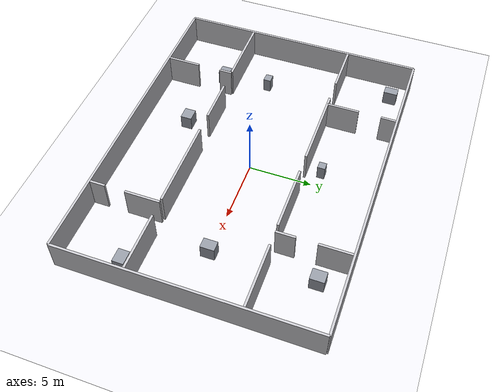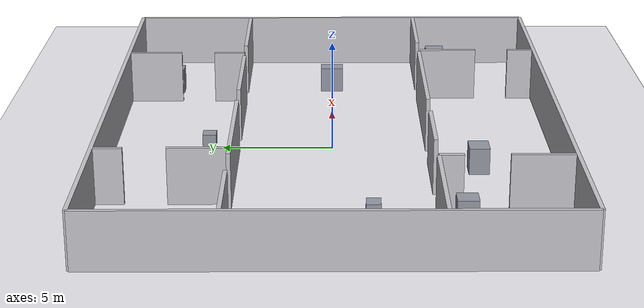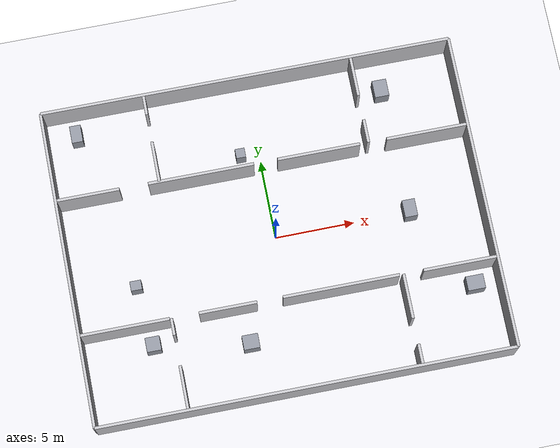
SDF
<?xml version="1.0"?>
<sdf version="1.9"><world name="new_room_world">
<plugin filename="gz-sim-physics-system" name="gz::sim::systems::Physics"/><plugin filename="gz-sim-user-commands-system" name="gz::sim::systems::UserCommands"/><plugin filename="gz-sim-scene-broadcaster-system" name="gz::sim::systems::SceneBroadcaster"/><plugin filename="gz-sim-sensors-system" name="gz::sim::systems::Sensors"><render_engine>ogre2</render_engine></plugin><plugin filename="gz-sim-imu-system" name="gz::sim::systems::Imu"/>
<physics name="new_room_realtime" type="ignored"><max_step_size>0.001</max_step_size><real_time_factor>1</real_time_factor></physics><gravity>0 0 -9.8</gravity><scene><ambient>0.85 0.85 0.87 1</ambient><background>0.68 0.68 0.71 1</background><shadows>false</shadows></scene><light name="sun" type="directional"><cast_shadows>false</cast_shadows><pose>0 0 10 0 0 0</pose><diffuse>0.95 0.95 0.95 1</diffuse><direction>-0.3 0.2 -1</direction></light>
<model name="new_room_ground"><static>true</static><link name="ground_link"><collision name="ground_collision"><geometry><plane><normal>0 0 1</normal><size>40 32</size></plane></geometry></collision><visual name="ground_visual"><geometry><plane><normal>0 0 1</normal><size>40 32</size></plane></geometry><material><ambient>0.92 0.92 0.94 1</ambient><diffuse>0.92 0.92 0.94 1</diffuse></material></visual></link></model>
<model name="mini_hospital_structure"><static>true</static><link name="structure">
<collision name="mx048_c000"><pose>0 10 1.25 0 0 0</pose><geometry><box><size>26 0.18 2.5</size></box></geometry></collision><visual name="mx048_v000"><pose>0 10 1.25 0 0 0</pose><geometry><box><size>26 0.18 2.5</size></box></geometry><material><ambient>0.78 0.78 0.80 1</ambient><diffuse>0.78 0.78 0.80 1</diffuse></material></visual>
<collision name="mx048_c001"><pose>0 -10 1.25 0 0 0</pose><geometry><box><size>26 0.18 2.5</size></box></geometry></collision><visual name="mx048_v001"><pose>0 -10 1.25 0 0 0</pose><geometry><box><size>26 0.18 2.5</size></box></geometry><material><ambient>0.78 0.78 0.80 1</ambient><diffuse>0.78 0.78 0.80 1</diffuse></material></visual>
<collision name="mx048_c002"><pose>-13 0 1.25 0 0 0</pose><geometry><box><size>0.18 20 2.5</size></box></geometry></collision><visual name="mx048_v002"><pose>-13 0 1.25 0 0 0</pose><geometry><box><size>0.18 20 2.5</size></box></geometry><material><ambient>0.78 0.78 0.80 1</ambient><diffuse>0.78 0.78 0.80 1</diffuse></material></visual>
<collision name="mx048_c003"><pose>13 0 1.25 0 0 0</pose><geometry><box><size>0.18 20 2.5</size></box></geometry></collision><visual name="mx048_v003"><pose>13 0 1.25 0 0 0</pose><geometry><box><size>0.18 20 2.5</size></box></geometry><material><ambient>0.78 0.78 0.80 1</ambient><diffuse>0.78 0.78 0.80 1</diffuse></material></visual>
<collision name="mx048_c004"><pose>-10.955 4.3 1.25 0 0 0</pose><geometry><box><size>3.91 0.18 2.5</size></box></geometry></collision><visual name="mx048_v004"><pose>-10.955 4.3 1.25 0 0 0</pose><geometry><box><size>3.91 0.18 2.5</size></box></geometry><material><ambient>0.78 0.78 0.80 1</ambient><diffuse>0.78 0.78 0.80 1</diffuse></material></visual>
<collision name="mx048_c005"><pose>-3.875 4.3 1.25 0 0 0</pose><geometry><box><size>6.65 0.18 2.5</size></box></geometry></collision><visual name="mx048_v005"><pose>-3.875 4.3 1.25 0 0 0</pose><geometry><box><size>6.65 0.18 2.5</size></box></geometry><material><ambient>0.78 0.78 0.80 1</ambient><diffuse>0.78 0.78 0.80 1</diffuse></material></visual>
<collision name="mx048_c006"><pose>3.55 4.3 1.25 0 0 0</pose><geometry><box><size>5.2 0.18 2.5</size></box></geometry></collision><visual name="mx048_v006"><pose>3.55 4.3 1.25 0 0 0</pose><geometry><box><size>5.2 0.18 2.5</size></box></geometry><material><ambient>0.78 0.78 0.80 1</ambient><diffuse>0.78 0.78 0.80 1</diffuse></material></visual>
<collision name="mx048_c007"><pose>10.38 4.3 1.25 0 0 0</pose><geometry><box><size>5.06 0.18 2.5</size></box></geometry></collision><visual name="mx048_v007"><pose>10.38 4.3 1.25 0 0 0</pose><geometry><box><size>5.06 0.18 2.5</size></box></geometry><material><ambient>0.78 0.78 0.80 1</ambient><diffuse>0.78 0.78 0.80 1</diffuse></material></visual>
<collision name="mx048_c008"><pose>-10.155 -4.3 1.25 0 0 0</pose><geometry><box><size>5.51 0.18 2.5</size></box></geometry></collision><visual name="mx048_v008"><pose>-10.155 -4.3 1.25 0 0 0</pose><geometry><box><size>5.51 0.18 2.5</size></box></geometry><material><ambient>0.78 0.78 0.80 1</ambient><diffuse>0.78 0.78 0.80 1</diffuse></material></visual>
<collision name="mx048_c009"><pose>-3.8 -4.3 1.25 0 0 0</pose><geometry><box><size>3.6 0.18 2.5</size></box></geometry></collision><visual name="mx048_v009"><pose>-3.8 -4.3 1.25 0 0 0</pose><geometry><box><size>3.6 0.18 2.5</size></box></geometry><material><ambient>0.78 0.78 0.80 1</ambient><diffuse>0.78 0.78 0.80 1</diffuse></material></visual>
<collision name="mx048_c010"><pose>3.225 -4.3 1.25 0 0 0</pose><geometry><box><size>7.25 0.18 2.5</size></box></geometry></collision><visual name="mx048_v010"><pose>3.225 -4.3 1.25 0 0 0</pose><geometry><box><size>7.25 0.18 2.5</size></box></geometry><material><ambient>0.78 0.78 0.80 1</ambient><diffuse>0.78 0.78 0.80 1</diffuse></material></visual>
<collision name="mx048_c011"><pose>10.63 -4.3 1.25 0 0 0</pose><geometry><box><size>4.56 0.18 2.5</size></box></geometry></collision><visual name="mx048_v011"><pose>10.63 -4.3 1.25 0 0 0</pose><geometry><box><size>4.56 0.18 2.5</size></box></geometry><material><ambient>0.78 0.78 0.80 1</ambient><diffuse>0.78 0.78 0.80 1</diffuse></material></visual>
<collision name="mx048_c012"><pose>-6.5 5.6 1.25 0 0 0</pose><geometry><box><size>0.18 2.6 2.5</size></box></geometry></collision><visual name="mx048_v012"><pose>-6.5 5.6 1.25 0 0 0</pose><geometry><box><size>0.18 2.6 2.5</size></box></geometry><material><ambient>0.78 0.78 0.80 1</ambient><diffuse>0.78 0.78 0.80 1</diffuse></material></visual>
<collision name="mx048_c013"><pose>-6.5 9.305 1.25 0 0 0</pose><geometry><box><size>0.18 1.21 2.5</size></box></geometry></collision><visual name="mx048_v013"><pose>-6.5 9.305 1.25 0 0 0</pose><geometry><box><size>0.18 1.21 2.5</size></box></geometry><material><ambient>0.78 0.78 0.80 1</ambient><diffuse>0.78 0.78 0.80 1</diffuse></material></visual>
<collision name="mx048_c014"><pose>6.7 5.05 1.25 0 0 0</pose><geometry><box><size>0.18 1.5 2.5</size></box></geometry></collision><visual name="mx048_v014"><pose>6.7 5.05 1.25 0 0 0</pose><geometry><box><size>0.18 1.5 2.5</size></box></geometry><material><ambient>0.78 0.78 0.80 1</ambient><diffuse>0.78 0.78 0.80 1</diffuse></material></visual>
<collision name="mx048_c015"><pose>6.7 8.655 1.25 0 0 0</pose><geometry><box><size>0.18 2.51 2.5</size></box></geometry></collision><visual name="mx048_v015"><pose>6.7 8.655 1.25 0 0 0</pose><geometry><box><size>0.18 2.51 2.5</size></box></geometry><material><ambient>0.78 0.78 0.80 1</ambient><diffuse>0.78 0.78 0.80 1</diffuse></material></visual>
<collision name="mx048_c016"><pose>-7.3 -8.58 1.25 0 0 0</pose><geometry><box><size>0.18 2.66 2.5</size></box></geometry></collision><visual name="mx048_v016"><pose>-7.3 -8.58 1.25 0 0 0</pose><geometry><box><size>0.18 2.66 2.5</size></box></geometry><material><ambient>0.78 0.78 0.80 1</ambient><diffuse>0.78 0.78 0.80 1</diffuse></material></visual>
<collision name="mx048_c017"><pose>-7.3 -4.825 1.25 0 0 0</pose><geometry><box><size>0.18 1.05 2.5</size></box></geometry></collision><visual name="mx048_v017"><pose>-7.3 -4.825 1.25 0 0 0</pose><geometry><box><size>0.18 1.05 2.5</size></box></geometry><material><ambient>0.78 0.78 0.80 1</ambient><diffuse>0.78 0.78 0.80 1</diffuse></material></visual>
<collision name="mx048_c018"><pose>7.1 -9.305 1.25 0 0 0</pose><geometry><box><size>0.18 1.21 2.5</size></box></geometry></collision><visual name="mx048_v018"><pose>7.1 -9.305 1.25 0 0 0</pose><geometry><box><size>0.18 1.21 2.5</size></box></geometry><material><ambient>0.78 0.78 0.80 1</ambient><diffuse>0.78 0.78 0.80 1</diffuse></material></visual>
<collision name="mx048_c019"><pose>7.1 -5.7 1.25 0 0 0</pose><geometry><box><size>0.18 2.8 2.5</size></box></geometry></collision><visual name="mx048_v019"><pose>7.1 -5.7 1.25 0 0 0</pose><geometry><box><size>0.18 2.8 2.5</size></box></geometry><material><ambient>0.78 0.78 0.80 1</ambient><diffuse>0.78 0.78 0.80 1</diffuse></material></visual>
<collision name="mx048_c020"><pose>-11.1 8.7 0.6 0 0 0</pose><geometry><box><size>0.7 1.1 1.2</size></box></geometry></collision><visual name="mx048_v020"><pose>-11.1 8.7 0.6 0 0 0</pose><geometry><box><size>0.7 1.1 1.2</size></box></geometry><material><ambient>0.58 0.60 0.64 1</ambient><diffuse>0.58 0.60 0.64 1</diffuse></material></visual>
<collision name="mx048_c021"><pose>-1.2 5.5 0.6 0 0 0</pose><geometry><box><size>0.6 0.6 1.2</size></box></geometry></collision><visual name="mx048_v021"><pose>-1.2 5.5 0.6 0 0 0</pose><geometry><box><size>0.6 0.6 1.2</size></box></geometry><material><ambient>0.58 0.60 0.64 1</ambient><diffuse>0.58 0.60 0.64 1</diffuse></material></visual>
<collision name="mx048_c022"><pose>8.3 8 0.6 0 0 0</pose><geometry><box><size>0.9 1.1 1.2</size></box></geometry></collision><visual name="mx048_v022"><pose>8.3 8 0.6 0 0 0</pose><geometry><box><size>0.9 1.1 1.2</size></box></geometry><material><ambient>0.58 0.60 0.64 1</ambient><diffuse>0.58 0.60 0.64 1</diffuse></material></visual>
<collision name="mx048_c023"><pose>-8.7 -5.4 0.6 0 0 0</pose><geometry><box><size>0.9 0.9 1.2</size></box></geometry></collision><visual name="mx048_v023"><pose>-8.7 -5.4 0.6 0 0 0</pose><geometry><box><size>0.9 0.9 1.2</size></box></geometry><material><ambient>0.58 0.60 0.64 1</ambient><diffuse>0.58 0.60 0.64 1</diffuse></material></visual>
<collision name="mx048_c024"><pose>-2.8 -6.4 0.6 0 0 0</pose><geometry><box><size>1 0.9 1.2</size></box></geometry></collision><visual name="mx048_v024"><pose>-2.8 -6.4 0.6 0 0 0</pose><geometry><box><size>1 0.9 1.2</size></box></geometry><material><ambient>0.58 0.60 0.64 1</ambient><diffuse>0.58 0.60 0.64 1</diffuse></material></visual>
<collision name="mx048_c025"><pose>11.5 -5.4 0.6 0 0 0</pose><geometry><box><size>1.1 0.9 1.2</size></box></geometry></collision><visual name="mx048_v025"><pose>11.5 -5.4 0.6 0 0 0</pose><geometry><box><size>1.1 0.9 1.2</size></box></geometry><material><ambient>0.58 0.60 0.64 1</ambient><diffuse>0.58 0.60 0.64 1</diffuse></material></visual>
<collision name="mx048_c026"><pose>-9.1 -1.6 0.6 0 0 0</pose><geometry><box><size>0.7 0.6 1.2</size></box></geometry></collision><visual name="mx048_v026"><pose>-9.1 -1.6 0.6 0 0 0</pose><geometry><box><size>0.7 0.6 1.2</size></box></geometry><material><ambient>0.58 0.60 0.64 1</ambient><diffuse>0.58 0.60 0.64 1</diffuse></material></visual>
<collision name="mx048_c027"><pose>8.5 0 0.6 0 0 0</pose><geometry><box><size>0.8 1.1 1.2</size></box></geometry></collision><visual name="mx048_v027"><pose>8.5 0 0.6 0 0 0</pose><geometry><box><size>0.8 1.1 1.2</size></box></geometry><material><ambient>0.58 0.60 0.64 1</ambient><diffuse>0.58 0.60 0.64 1</diffuse></material></visual>
</link></model></world></sdf>
